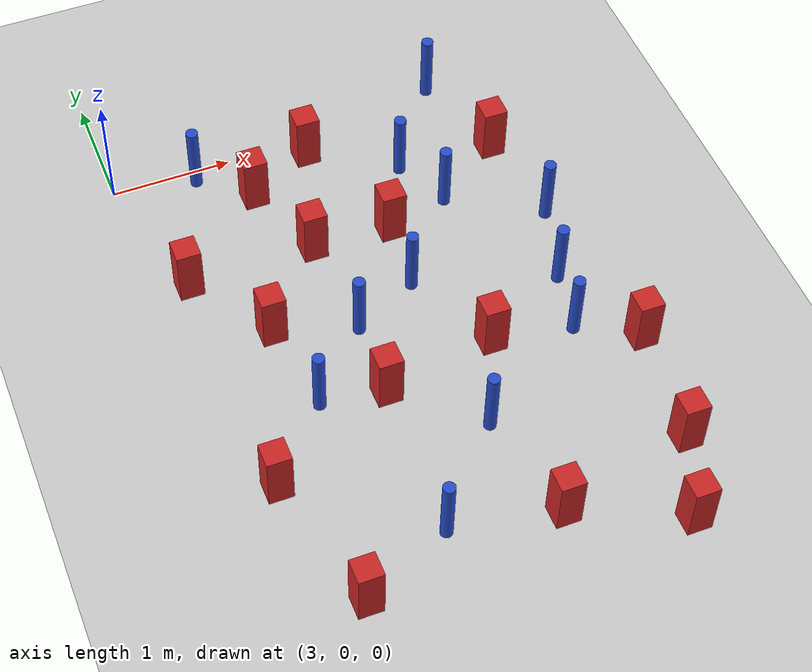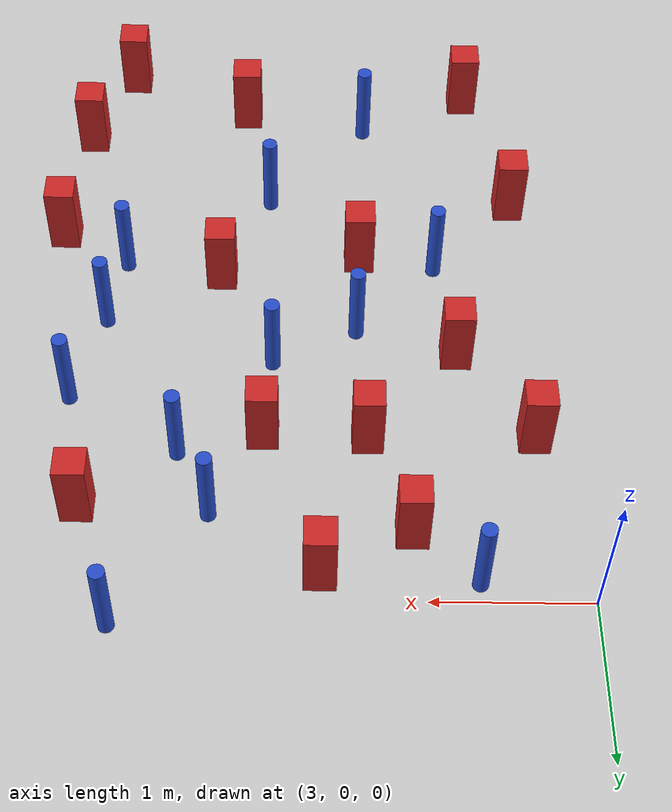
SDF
<sdf version="1.6">
 <world name="default">
  <model name="ground_plane">
   <static>1</static>
   <link name="link">
    <collision name="collision">
     <geometry><plane><normal>0 0 1</normal><size>100 100</size></plane></geometry>
     <surface><friction><ode><mu>100</mu><mu2>50</mu2></ode></friction></surface>
    </collision>
    <visual name="visual">
     <cast_shadows>0</cast_shadows>
     <geometry><plane><normal>0 0 1</normal><size>100 100</size></plane></geometry>
     <material>
      <ambient>1.0 1.0 1.0 1.0</ambient>
      <diffuse>0.8 0.8 0.8 1.0</diffuse>
      <specular>0.01 0.01 0.01 1.000000</specular>
     </material>
    </visual>
   </link>
  </model>
  <model name="square_post_obstacle5">
   <static>true</static>
   <pose>5.31786343804 -2.54528029594 8.22691968438e-08 7.2212513382e-06 -7.54495500217e-07 2.29674213826e-05</pose>
   <link name="link">
    <pose>0 0 0.25 0 -0 0</pose>
    <inertial>
     <mass>100</mass>
     <inertia>
      <ixx>0.166667</ixx>
      <ixy>0</ixy>
      <ixz>0</ixz>
      <iyy>0.166667</iyy>
      <iyz>0</iyz>
      <izz>0.166667</izz>
     </inertia>
    </inertial>
    <collision name="collision"><geometry><box><size>.2 .2 .5</size></box></geometry></collision>
    <visual name="visual">
     <geometry><box><size>.2 .2 .5</size></box></geometry>
     <material>
      <script><name>Gazebo/Red</name><uri>file://media/materials/scripts/gazebo.material</uri></script>
     </material>
    </visual>
   </link>
  </model>
  <model name="pole_obstacle44">
   <static>true</static>
   <pose>6.07542081839 -2.14108995029 2.88873142074e-08 -9.90536690245e-09 4.6021994898e-07 -1.20965994966e-07</pose>
   <link name="link">
    <pose>0 0 0.3 0 -0 0</pose>
    <inertial>
     <mass>1</mass>
     <inertia><ixx>0.145833</ixx><ixy>0</ixy><ixz>0</ixz><iyy>0.145833</iyy><iyz>0</iyz><izz>0.125</izz></inertia>
    </inertial>
    <collision name="collision">
     <geometry><cylinder><radius>0.05</radius><length>.6</length></cylinder></geometry>
    </collision>
    <visual name="visual">
     <geometry><cylinder><radius>0.05</radius><length>.6</length></cylinder></geometry>
     <material>
      <script><name>Gazebo/Blue</name><uri>file://media/materials/scripts/gazebo.material</uri></script>
     </material>
    </visual>
   </link>
  </model>
  <model name="square_post_obstacle38">
   <static>true</static>
   <pose>6.43211650648 -2.92535425351 8.22691968438e-08 7.2212513382e-06 -7.54495500217e-07 2.29674213826e-05</pose>
   <link name="link">
    <pose>0 0 0.25 0 -0 0</pose>
    <inertial>
     <mass>100</mass>
     <inertia>
      <ixx>0.166667</ixx>
      <ixy>0</ixy>
      <ixz>0</ixz>
      <iyy>0.166667</iyy>
      <iyz>0</iyz>
      <izz>0.166667</izz>
     </inertia>
    </inertial>
    <collision name="collision"><geometry><box><size>.2 .2 .5</size></box></geometry></collision>
    <visual name="visual">
     <geometry><box><size>.2 .2 .5</size></box></geometry>
     <material>
      <script><name>Gazebo/Red</name><uri>file://media/materials/scripts/gazebo.material</uri></script>
     </material>
    </visual>
   </link>
  </model>
  <model name="square_post_obstacle46">
   <static>true</static>
   <pose>6.32021658059 -3.9000568926 8.22691968438e-08 7.22125133819e-06 -7.54495500217e-07 2.29674213826e-05</pose>
   <link name="link">
    <pose>0 0 0.25 0 -0 0</pose>
    <inertial>
     <mass>100</mass>
     <inertia>
      <ixx>0.166667</ixx>
      <ixy>0</ixy>
      <ixz>0</ixz>
      <iyy>0.166667</iyy>
      <iyz>0</iyz>
      <izz>0.166667</izz>
     </inertia>
    </inertial>
    <collision name="collision"><geometry><box><size>.2 .2 .5</size></box></geometry></collision>
    <visual name="visual">
     <geometry><box><size>.2 .2 .5</size></box></geometry>
     <material>
      <script><name>Gazebo/Red</name><uri>file://media/materials/scripts/gazebo.material</uri></script>
     </material>
    </visual>
   </link>
  </model>
  <model name="square_post_obstacle58">
   <static>true</static>
   <pose>4.37775303697 -2.71327068398 8.22691968438e-08 7.2212513382e-06 -7.54495500217e-07 2.29674213826e-05</pose>
   <link name="link">
    <pose>0 0 0.25 0 -0 0</pose>
    <inertial>
     <mass>100</mass>
     <inertia>
      <ixx>0.166667</ixx>
      <ixy>0</ixy>
      <ixz>0</ixz>
      <iyy>0.166667</iyy>
      <iyz>0</iyz>
      <izz>0.166667</izz>
     </inertia>
    </inertial>
    <collision name="collision"><geometry><box><size>.2 .2 .5</size></box></geometry></collision>
    <visual name="visual">
     <geometry><box><size>.2 .2 .5</size></box></geometry>
     <material>
      <script><name>Gazebo/Red</name><uri>file://media/materials/scripts/gazebo.material</uri></script>
     </material>
    </visual>
   </link>
  </model>
  <model name="square_post_obstacle68">
   <static>true</static>
   <pose>3.58802159314 -4.34802233731 8.22691968438e-08 7.22125133819e-06 -7.54495500217e-07 2.29674213826e-05</pose>
   <link name="link">
    <pose>0 0 0.25 0 -0 0</pose>
    <inertial>
     <mass>100</mass>
     <inertia>
      <ixx>0.166667</ixx>
      <ixy>0</ixy>
      <ixz>0</ixz>
      <iyy>0.166667</iyy>
      <iyz>0</iyz>
      <izz>0.166667</izz>
     </inertia>
    </inertial>
    <collision name="collision"><geometry><box><size>.2 .2 .5</size></box></geometry></collision>
    <visual name="visual">
     <geometry><box><size>.2 .2 .5</size></box></geometry>
     <material>
      <script><name>Gazebo/Red</name><uri>file://media/materials/scripts/gazebo.material</uri></script>
     </material>
    </visual>
   </link>
  </model>
  <model name="pole_obstacle81">
   <static>true</static>
   <pose>4.95241768015 -1.78619356751 2.88873142074e-08 -9.90536689445e-09 4.60219948999e-07 -1.20965994956e-07</pose>
   <link name="link">
    <pose>0 0 0.3 0 -0 0</pose>
    <inertial>
     <mass>1</mass>
     <inertia><ixx>0.145833</ixx><ixy>0</ixy><ixz>0</ixz><iyy>0.145833</iyy><iyz>0</iyz><izz>0.125</izz></inertia>
    </inertial>
    <collision name="collision">
     <geometry><cylinder><radius>0.05</radius><length>.6</length></cylinder></geometry>
    </collision>
    <visual name="visual">
     <geometry><cylinder><radius>0.05</radius><length>.6</length></cylinder></geometry>
     <material>
      <script><name>Gazebo/Blue</name><uri>file://media/materials/scripts/gazebo.material</uri></script>
     </material>
    </visual>
   </link>
  </model>
  <model name="square_post_obstacle75">
   <static>true</static>
   <pose>5.19147976113 -4.17129760656 8.22691968438e-08 7.22125133819e-06 -7.54495500217e-07 2.29674213826e-05</pose>
   <link name="link">
    <pose>0 0 0.25 0 -0 0</pose>
    <inertial>
     <mass>100</mass>
     <inertia>
      <ixx>0.166667</ixx>
      <ixy>0</ixy>
      <ixz>0</ixz>
      <iyy>0.166667</iyy>
      <iyz>0</iyz>
      <izz>0.166667</izz>
     </inertia>
    </inertial>
    <collision name="collision"><geometry><box><size>.2 .2 .5</size></box></geometry></collision>
    <visual name="visual">
     <geometry><box><size>.2 .2 .5</size></box></geometry>
     <material>
      <script><name>Gazebo/Red</name><uri>file://media/materials/scripts/gazebo.material</uri></script>
     </material>
    </visual>
   </link>
  </model>
  <model name="square_post_obstacle83">
   <static>true</static>
   <pose>4.3384628491 -1.16914456645 8.22691968438e-08 7.2212513382e-06 -7.54495500217e-07 2.29674213826e-05</pose>
   <link name="link">
    <pose>0 0 0.25 0 -0 0</pose>
    <inertial>
     <mass>100</mass>
     <inertia>
      <ixx>0.166667</ixx>
      <ixy>0</ixy>
      <ixz>0</ixz>
      <iyy>0.166667</iyy>
      <iyz>0</iyz>
      <izz>0.166667</izz>
     </inertia>
    </inertial>
    <collision name="collision"><geometry><box><size>.2 .2 .5</size></box></geometry></collision>
    <visual name="visual">
     <geometry><box><size>.2 .2 .5</size></box></geometry>
     <material>
      <script><name>Gazebo/Red</name><uri>file://media/materials/scripts/gazebo.material</uri></script>
     </material>
    </visual>
   </link>
  </model>
  <model name="square_post_obstacle95">
   <static>true</static>
   <pose>6.12411599231 -0.635673553487 8.22691968438e-08 7.2212513382e-06 -7.54495500217e-07 2.29674213826e-05</pose>
   <link name="link">
    <pose>0 0 0.25 0 -0 0</pose>
    <inertial>
     <mass>100</mass>
     <inertia>
      <ixx>0.166667</ixx>
      <ixy>0</ixy>
      <ixz>0</ixz>
      <iyy>0.166667</iyy>
      <iyz>0</iyz>
      <izz>0.166667</izz>
     </inertia>
    </inertial>
    <collision name="collision"><geometry><box><size>.2 .2 .5</size></box></geometry></collision>
    <visual name="visual">
     <geometry><box><size>.2 .2 .5</size></box></geometry>
     <material>
      <script><name>Gazebo/Red</name><uri>file://media/materials/scripts/gazebo.material</uri></script>
     </material>
    </visual>
   </link>
  </model>
  <model name="pole_obstacle113">
   <static>true</static>
   <pose>5.00227952551 -3.2606734221 2.88873142074e-08 -9.90536690245e-09 4.6021994898e-07 -1.20965994966e-07</pose>
   <link name="link">
    <pose>0 0 0.3 0 -0 0</pose>
    <inertial>
     <mass>1</mass>
     <inertia><ixx>0.145833</ixx><ixy>0</ixy><ixz>0</ixz><iyy>0.145833</iyy><iyz>0</iyz><izz>0.125</izz></inertia>
    </inertial>
    <collision name="collision">
     <geometry><cylinder><radius>0.05</radius><length>.6</length></cylinder></geometry>
    </collision>
    <visual name="visual">
     <geometry><cylinder><radius>0.05</radius><length>.6</length></cylinder></geometry>
     <material>
      <script><name>Gazebo/Blue</name><uri>file://media/materials/scripts/gazebo.material</uri></script>
     </material>
    </visual>
   </link>
  </model>
  <model name="square_post_obstacle121">
   <static>true</static>
   <pose>4.07720784741 -0.465047414351 8.22691968438e-08 7.2212513382e-06 -7.54495500217e-07 2.29674213826e-05</pose>
   <link name="link">
    <pose>0 0 0.25 0 -0 0</pose>
    <inertial>
     <mass>100</mass>
     <inertia>
      <ixx>0.166667</ixx>
      <ixy>0</ixy>
      <ixz>0</ixz>
      <iyy>0.166667</iyy>
      <iyz>0</iyz>
      <izz>0.166667</izz>
     </inertia>
    </inertial>
    <collision name="collision"><geometry><box><size>.2 .2 .5</size></box></geometry></collision>
    <visual name="visual">
     <geometry><box><size>.2 .2 .5</size></box></geometry>
     <material>
      <script><name>Gazebo/Red</name><uri>file://media/materials/scripts/gazebo.material</uri></script>
     </material>
    </visual>
   </link>
  </model>
  <model name="pole_obstacle124">
   <static>true</static>
   <pose>5.9761643938 -2.65296786863 2.88873142074e-08 -9.90536690245e-09 4.6021994898e-07 -1.20965994966e-07</pose>
   <link name="link">
    <pose>0 0 0.3 0 -0 0</pose>
    <inertial>
     <mass>1</mass>
     <inertia><ixx>0.145833</ixx><ixy>0</ixy><ixz>0</ixz><iyy>0.145833</iyy><iyz>0</iyz><izz>0.125</izz></inertia>
    </inertial>
    <collision name="collision">
     <geometry><cylinder><radius>0.05</radius><length>.6</length></cylinder></geometry>
    </collision>
    <visual name="visual">
     <geometry><cylinder><radius>0.05</radius><length>.6</length></cylinder></geometry>
     <material>
      <script><name>Gazebo/Blue</name><uri>file://media/materials/scripts/gazebo.material</uri></script>
     </material>
    </visual>
   </link>
  </model>
  <model name="square_post_obstacle129">
   <static>true</static>
   <pose>6.05348626226 -4.55975874972 8.22691968438e-08 7.22125133819e-06 -7.54495500217e-07 2.29674213826e-05</pose>
   <link name="link">
    <pose>0 0 0.25 0 -0 0</pose>
    <inertial>
     <mass>100</mass>
     <inertia>
      <ixx>0.166667</ixx>
      <ixy>0</ixy>
      <ixz>0</ixz>
      <iyy>0.166667</iyy>
      <iyz>0</iyz>
      <izz>0.166667</izz>
     </inertia>
    </inertial>
    <collision name="collision"><geometry><box><size>.2 .2 .5</size></box></geometry></collision>
    <visual name="visual">
     <geometry><box><size>.2 .2 .5</size></box></geometry>
     <material>
      <script><name>Gazebo/Red</name><uri>file://media/materials/scripts/gazebo.material</uri></script>
     </material>
    </visual>
   </link>
  </model>
  <model name="square_post_obstacle131">
   <static>true</static>
   <pose>3.28459243078 -1.18343457644 8.22691968438e-08 7.2212513382e-06 -7.54495500217e-07 2.29674213826e-05</pose>
   <link name="link">
    <pose>0 0 0.25 0 -0 0</pose>
    <inertial>
     <mass>100</mass>
     <inertia>
      <ixx>0.166667</ixx>
      <ixy>0</ixy>
      <ixz>0</ixz>
      <iyy>0.166667</iyy>
      <iyz>0</iyz>
      <izz>0.166667</izz>
     </inertia>
    </inertial>
    <collision name="collision"><geometry><box><size>.2 .2 .5</size></box></geometry></collision>
    <visual name="visual">
     <geometry><box><size>.2 .2 .5</size></box></geometry>
     <material>
      <script><name>Gazebo/Red</name><uri>file://media/materials/scripts/gazebo.material</uri></script>
     </material>
    </visual>
   </link>
  </model>
  <model name="square_post_obstacle137">
   <static>true</static>
   <pose>3.31383820803 -3.22889593247 8.22691968438e-08 7.2212513382e-06 -7.54495500217e-07 2.29674213826e-05</pose>
   <link name="link">
    <pose>0 0 0.25 0 -0 0</pose>
    <inertial>
     <mass>100</mass>
     <inertia>
      <ixx>0.166667</ixx>
      <ixy>0</ixy>
      <ixz>0</ixz>
      <iyy>0.166667</iyy>
      <iyz>0</iyz>
      <izz>0.166667</izz>
     </inertia>
    </inertial>
    <collision name="collision"><geometry><box><size>.2 .2 .5</size></box></geometry></collision>
    <visual name="visual">
     <geometry><box><size>.2 .2 .5</size></box></geometry>
     <material>
      <script><name>Gazebo/Red</name><uri>file://media/materials/scripts/gazebo.material</uri></script>
     </material>
    </visual>
   </link>
  </model>
  <model name="pole_obstacle144">
   <static>true</static>
   <pose>5.87548633294 0.177966807355 2.88873142074e-08 -9.90536689378e-09 4.60219949e-07 -1.20965994955e-07</pose>
   <link name="link">
    <pose>0 0 0.3 0 -0 0</pose>
    <inertial>
     <mass>1</mass>
     <inertia><ixx>0.145833</ixx><ixy>0</ixy><ixz>0</ixz><iyy>0.145833</iyy><iyz>0</iyz><izz>0.125</izz></inertia>
    </inertial>
    <collision name="collision">
     <geometry><cylinder><radius>0.05</radius><length>.6</length></cylinder></geometry>
    </collision>
    <visual name="visual">
     <geometry><cylinder><radius>0.05</radius><length>.6</length></cylinder></geometry>
     <material>
      <script><name>Gazebo/Blue</name><uri>file://media/materials/scripts/gazebo.material</uri></script>
     </material>
    </visual>
   </link>
  </model>
  <model name="pole_obstacle160">
   <static>true</static>
   <pose>3.68274872709 -0.123488795815 2.88873142074e-08 -9.90536689544e-09 4.60219948996e-07 -1.20965994957e-07</pose>
   <link name="link">
    <pose>0 0 0.3 0 -0 0</pose>
    <inertial>
     <mass>1</mass>
     <inertia><ixx>0.145833</ixx><ixy>0</ixy><ixz>0</ixz><iyy>0.145833</iyy><iyz>0</iyz><izz>0.125</izz></inertia>
    </inertial>
    <collision name="collision">
     <geometry><cylinder><radius>0.05</radius><length>.6</length></cylinder></geometry>
    </collision>
    <visual name="visual">
     <geometry><cylinder><radius>0.05</radius><length>.6</length></cylinder></geometry>
     <material>
      <script><name>Gazebo/Blue</name><uri>file://media/materials/scripts/gazebo.material</uri></script>
     </material>
    </visual>
   </link>
  </model>
  <model name="square_post_obstacle159">
   <static>true</static>
   <pose>4.63507756851 -0.170489444369 8.22691968438e-08 7.2212513382e-06 -7.54495500217e-07 2.29674213826e-05</pose>
   <link name="link">
    <pose>0 0 0.25 0 -0 0</pose>
    <inertial>
     <mass>100</mass>
     <inertia>
      <ixx>0.166667</ixx>
      <ixy>0</ixy>
      <ixz>0</ixz>
      <iyy>0.166667</iyy>
      <iyz>0</iyz>
      <izz>0.166667</izz>
     </inertia>
    </inertial>
    <collision name="collision"><geometry><box><size>.2 .2 .5</size></box></geometry></collision>
    <visual name="visual">
     <geometry><box><size>.2 .2 .5</size></box></geometry>
     <material>
      <script><name>Gazebo/Red</name><uri>file://media/materials/scripts/gazebo.material</uri></script>
     </material>
    </visual>
   </link>
  </model>
  <model name="square_post_obstacle162">
   <static>true</static>
   <pose>3.74961141501 -1.85672793688 8.22691968438e-08 7.2212513382e-06 -7.54495500217e-07 2.29674213826e-05</pose>
   <link name="link">
    <pose>0 0 0.25 0 -0 0</pose>
    <inertial>
     <mass>100</mass>
     <inertia>
      <ixx>0.166667</ixx>
      <ixy>0</ixy>
      <ixz>0</ixz>
      <iyy>0.166667</iyy>
      <iyz>0</iyz>
      <izz>0.166667</izz>
     </inertia>
    </inertial>
    <collision name="collision"><geometry><box><size>.2 .2 .5</size></box></geometry></collision>
    <visual name="visual">
     <geometry><box><size>.2 .2 .5</size></box></geometry>
     <material>
      <script><name>Gazebo/Red</name><uri>file://media/materials/scripts/gazebo.material</uri></script>
     </material>
    </visual>
   </link>
  </model>
  <model name="pole_obstacle167">
   <static>true</static>
   <pose>5.3208289241 -0.594580976757 2.88873142074e-08 -9.90536689837e-09 4.60219948989e-07 -1.2096599496e-07</pose>
   <link name="link">
    <pose>0 0 0.3 0 -0 0</pose>
    <inertial>
     <mass>1</mass>
     <inertia><ixx>0.145833</ixx><ixy>0</ixy><ixz>0</ixz><iyy>0.145833</iyy><iyz>0</iyz><izz>0.125</izz></inertia>
    </inertial>
    <collision name="collision">
     <geometry><cylinder><radius>0.05</radius><length>.6</length></cylinder></geometry>
    </collision>
    <visual name="visual">
     <geometry><cylinder><radius>0.05</radius><length>.6</length></cylinder></geometry>
     <material>
      <script><name>Gazebo/Blue</name><uri>file://media/materials/scripts/gazebo.material</uri></script>
     </material>
    </visual>
   </link>
  </model>
  <model name="pole_obstacle168">
   <static>true</static>
   <pose>6.26376191358 -1.48380141877 2.88873142074e-08 -9.90536689445e-09 4.60219948999e-07 -1.20965994956e-07</pose>
   <link name="link">
    <pose>0 0 0.3 0 -0 0</pose>
    <inertial>
     <mass>1</mass>
     <inertia><ixx>0.145833</ixx><ixy>0</ixy><ixz>0</ixz><iyy>0.145833</iyy><iyz>0</iyz><izz>0.125</izz></inertia>
    </inertial>
    <collision name="collision">
     <geometry><cylinder><radius>0.05</radius><length>.6</length></cylinder></geometry>
    </collision>
    <visual name="visual">
     <geometry><cylinder><radius>0.05</radius><length>.6</length></cylinder></geometry>
     <material>
      <script><name>Gazebo/Blue</name><uri>file://media/materials/scripts/gazebo.material</uri></script>
     </material>
    </visual>
   </link>
  </model>
  <model name="pole_obstacle183">
   <static>true</static>
   <pose>4.33603778157 -4.01074921902 2.88873142074e-08 -9.90536690819e-09 4.60219948966e-07 -1.20965994975e-07</pose>
   <link name="link">
    <pose>0 0 0.3 0 -0 0</pose>
    <inertial>
     <mass>1</mass>
     <inertia><ixx>0.145833</ixx><ixy>0</ixy><ixz>0</ixz><iyy>0.145833</iyy><iyz>0</iyz><izz>0.125</izz></inertia>
    </inertial>
    <collision name="collision">
     <geometry><cylinder><radius>0.05</radius><length>.6</length></cylinder></geometry>
    </collision>
    <visual name="visual">
     <geometry><cylinder><radius>0.05</radius><length>.6</length></cylinder></geometry>
     <material>
      <script><name>Gazebo/Blue</name><uri>file://media/materials/scripts/gazebo.material</uri></script>
     </material>
    </visual>
   </link>
  </model>
  <model name="square_post_obstacle190">
   <static>true</static>
   <pose>5.00233139646 -1.19386590558 8.22691968438e-08 7.2212513382e-06 -7.54495500217e-07 2.29674213826e-05</pose>
   <link name="link">
    <pose>0 0 0.25 0 -0 0</pose>
    <inertial>
     <mass>100</mass>
     <inertia>
      <ixx>0.166667</ixx>
      <ixy>0</ixy>
      <ixz>0</ixz>
      <iyy>0.166667</iyy>
      <iyz>0</iyz>
      <izz>0.166667</izz>
     </inertia>
    </inertial>
    <collision name="collision"><geometry><box><size>.2 .2 .5</size></box></geometry></collision>
    <visual name="visual">
     <geometry><box><size>.2 .2 .5</size></box></geometry>
     <material>
      <script><name>Gazebo/Red</name><uri>file://media/materials/scripts/gazebo.material</uri></script>
     </material>
    </visual>
   </link>
  </model>
  <model name="pole_obstacle188">
   <static>true</static>
   <pose>5.53814000596 -1.05076905337 2.88873142074e-08 -9.90536689445e-09 4.60219948999e-07 -1.20965994956e-07</pose>
   <link name="link">
    <pose>0 0 0.3 0 -0 0</pose>
    <inertial>
     <mass>1</mass>
     <inertia><ixx>0.145833</ixx><ixy>0</ixy><ixz>0</ixz><iyy>0.145833</iyy><iyz>0</iyz><izz>0.125</izz></inertia>
    </inertial>
    <collision name="collision">
     <geometry><cylinder><radius>0.05</radius><length>.6</length></cylinder></geometry>
    </collision>
    <visual name="visual">
     <geometry><cylinder><radius>0.05</radius><length>.6</length></cylinder></geometry>
     <material>
      <script><name>Gazebo/Blue</name><uri>file://media/materials/scripts/gazebo.material</uri></script>
     </material>
    </visual>
   </link>
  </model>
  <model name="pole_obstacle191">
   <static>true</static>
   <pose>3.86479677718 -2.62864701821 2.88873142074e-08 -9.90536690232e-09 4.6021994898e-07 -1.20965994968e-07</pose>
   <link name="link">
    <pose>0 0 0.3 0 -0 0</pose>
    <inertial>
     <mass>1</mass>
     <inertia><ixx>0.145833</ixx><ixy>0</ixy><ixz>0</ixz><iyy>0.145833</iyy><iyz>0</iyz><izz>0.125</izz></inertia>
    </inertial>
    <collision name="collision">
     <geometry><cylinder><radius>0.05</radius><length>.6</length></cylinder></geometry>
    </collision>
    <visual name="visual">
     <geometry><cylinder><radius>0.05</radius><length>.6</length></cylinder></geometry>
     <material>
      <script><name>Gazebo/Blue</name><uri>file://media/materials/scripts/gazebo.material</uri></script>
     </material>
    </visual>
   </link>
  </model>
  <model name="pole_obstacle206">
   <static>true</static>
   <pose>4.40287803513 -2.05980797383 2.88873142074e-08 -9.90536690245e-09 4.6021994898e-07 -1.20965994966e-07</pose>
   <link name="link">
    <pose>0 0 0.3 0 -0 0</pose>
    <inertial>
     <mass>1</mass>
     <inertia><ixx>0.145833</ixx><ixy>0</ixy><ixz>0</ixz><iyy>0.145833</iyy><iyz>0</iyz><izz>0.125</izz></inertia>
    </inertial>
    <collision name="collision">
     <geometry><cylinder><radius>0.05</radius><length>.6</length></cylinder></geometry>
    </collision>
    <visual name="visual">
     <geometry><cylinder><radius>0.05</radius><length>.6</length></cylinder></geometry>
     <material>
      <script><name>Gazebo/Blue</name><uri>file://media/materials/scripts/gazebo.material</uri></script>
     </material>
    </visual>
   </link>
  </model>
 </world>
</sdf>
